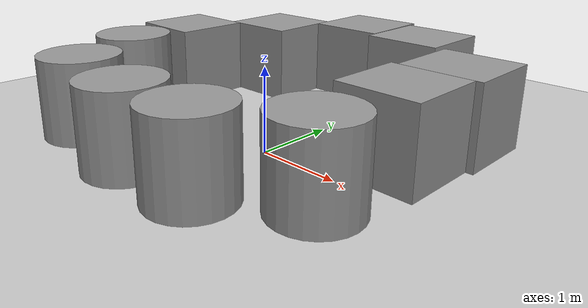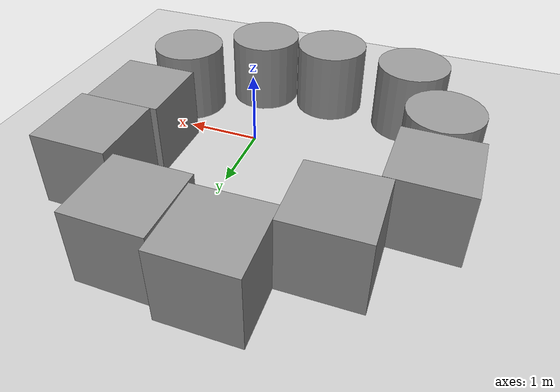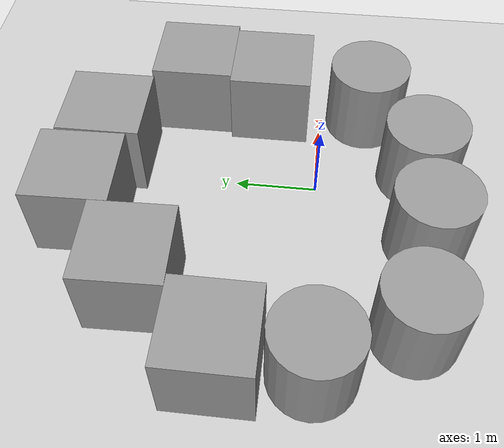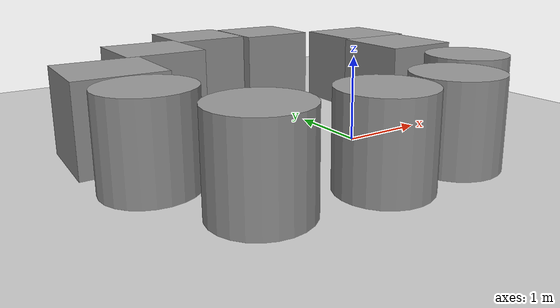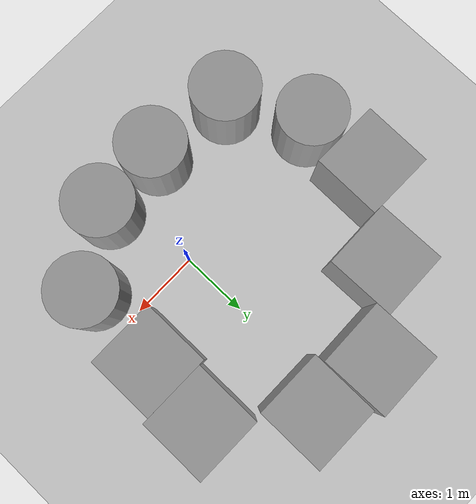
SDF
<sdf version="1.7">
 <world name="default">
  <light name="sun" type="directional">
   <pose>0 0 10 0 -0 0</pose>
   <diffuse>0.8 0.8 0.8 1</diffuse>
   <specular>0.2 0.2 0.2 1</specular>
   <attenuation>
    <range>1000</range>
    <constant>0.9</constant>
    <linear>0.01</linear>
    <quadratic>0.001</quadratic>
   </attenuation>
   <direction>-0.5 0.1 -0.9</direction>
   <spot><inner_angle>0</inner_angle><outer_angle>0</outer_angle><falloff>0</falloff></spot>
  </light>
  <model name="ground_plane">
   <static>1</static>
   <link name="link">
    <collision name="collision">
     <geometry><plane><normal>0 0 1</normal><size>100 100</size></plane></geometry>
     <surface><friction><ode><mu>100</mu><mu2>50</mu2></ode></friction></surface>
    </collision>
    <visual name="visual">
     <cast_shadows>0</cast_shadows>
     <geometry><plane><normal>0 0 1</normal><size>100 100</size></plane></geometry>
     <material>
      <script><uri>file://media/materials/scripts/gazebo.material</uri><name>Gazebo/Grey</name></script>
     </material>
    </visual>
   </link>
  </model>
  <gravity>0 0 -9.8</gravity>
  <magnetic_field>6e-06 2.3e-05 -4.2e-05</magnetic_field>
  <atmosphere type="adiabatic"/>
  <physics type="ode">
   <max_step_size>0.001</max_step_size>
   <real_time_factor>1</real_time_factor>
   <real_time_update_rate>1000</real_time_update_rate>
  </physics>
  <scene><ambient>0.4 0.4 0.4 1</ambient><background>0.7 0.7 0.7 1</background><shadows>1</shadows></scene>
  <spherical_coordinates>
   <surface_model>EARTH_WGS84</surface_model>
   <latitude_deg>0</latitude_deg>
   <longitude_deg>0</longitude_deg>
   <elevation>0</elevation>
   <heading_deg>0</heading_deg>
  </spherical_coordinates>
  <audio><device>default</device></audio>
  <model name="unit_box">
   <pose>-2.55355 0.943813 0.499995 1e-05 -0 -0.008103</pose>
   <link name="link">
    <inertial>
     <mass>1</mass>
     <inertia>
      <ixx>0.166667</ixx>
      <ixy>0</ixy>
      <ixz>0</ixz>
      <iyy>0.166667</iyy>
      <iyz>0</iyz>
      <izz>0.166667</izz>
     </inertia>
    </inertial>
    <collision name="collision"><geometry><box><size>1 1 1</size></box></geometry></collision>
    <visual name="visual">
     <geometry><box><size>1 1 1</size></box></geometry>
     <material>
      <script><name>Gazebo/Grey</name><uri>file://media/materials/scripts/gazebo.material</uri></script>
     </material>
    </visual>
   </link>
  </model>
  <model name="unit_box_0">
   <pose>-1.70283 1.95109 0.499995 0 1e-05 0.020154</pose>
   <link name="link">
    <inertial>
     <mass>1</mass>
     <inertia>
      <ixx>0.166667</ixx>
      <ixy>0</ixy>
      <ixz>0</ixz>
      <iyy>0.166667</iyy>
      <iyz>0</iyz>
      <izz>0.166667</izz>
     </inertia>
    </inertial>
    <collision name="collision"><geometry><box><size>1 1 1</size></box></geometry></collision>
    <visual name="visual">
     <geometry><box><size>1 1 1</size></box></geometry>
     <material>
      <script><name>Gazebo/Grey</name><uri>file://media/materials/scripts/gazebo.material</uri></script>
     </material>
    </visual>
   </link>
  </model>
  <model name="unit_box_1">
   <pose>-0.718512 2.74903 0.5 0 -0 0.020323</pose>
   <link name="link">
    <inertial>
     <mass>1</mass>
     <inertia>
      <ixx>0.166667</ixx>
      <ixy>0</ixy>
      <ixz>0</ixz>
      <iyy>0.166667</iyy>
      <iyz>0</iyz>
      <izz>0.166667</izz>
     </inertia>
    </inertial>
    <collision name="collision"><geometry><box><size>1 1 1</size></box></geometry></collision>
    <visual name="visual">
     <geometry><box><size>1 1 1</size></box></geometry>
     <material>
      <script><name>Gazebo/Grey</name><uri>file://media/materials/scripts/gazebo.material</uri></script>
     </material>
    </visual>
   </link>
  </model>
  <model name="unit_box_2">
   <pose>0.302542 2.61661 0.499995 -1e-05 -0 -0</pose>
   <link name="link">
    <inertial>
     <mass>1</mass>
     <inertia>
      <ixx>0.166667</ixx>
      <ixy>0</ixy>
      <ixz>0</ixz>
      <iyy>0.166667</iyy>
      <iyz>0</iyz>
      <izz>0.166667</izz>
     </inertia>
    </inertial>
    <collision name="collision"><geometry><box><size>1 1 1</size></box></geometry></collision>
    <visual name="visual">
     <geometry><box><size>1 1 1</size></box></geometry>
     <material>
      <script><name>Gazebo/Grey</name><uri>file://media/materials/scripts/gazebo.material</uri></script>
     </material>
    </visual>
   </link>
  </model>
  <model name="unit_box_3">
   <pose>1.4054 1.66152 0.499995 -1e-05 -0 -0.000272</pose>
   <link name="link">
    <inertial>
     <mass>1</mass>
     <inertia>
      <ixx>0.166667</ixx>
      <ixy>0</ixy>
      <ixz>0</ixz>
      <iyy>0.166667</iyy>
      <iyz>0</iyz>
      <izz>0.166667</izz>
     </inertia>
    </inertial>
    <collision name="collision"><geometry><box><size>1 1 1</size></box></geometry></collision>
    <visual name="visual">
     <geometry><box><size>1 1 1</size></box></geometry>
     <material>
      <script><name>Gazebo/Grey</name><uri>file://media/materials/scripts/gazebo.material</uri></script>
     </material>
    </visual>
   </link>
  </model>
  <model name="unit_box_4">
   <pose>1.31957 0.661537 0.499995 -1e-05 -0 -0.000282</pose>
   <link name="link">
    <inertial>
     <mass>1</mass>
     <inertia>
      <ixx>0.166667</ixx>
      <ixy>0</ixy>
      <ixz>0</ixz>
      <iyy>0.166667</iyy>
      <iyz>0</iyz>
      <izz>0.166667</izz>
     </inertia>
    </inertial>
    <collision name="collision"><geometry><box><size>1 1 1</size></box></geometry></collision>
    <visual name="visual">
     <geometry><box><size>1 1 1</size></box></geometry>
     <material>
      <script><name>Gazebo/Grey</name><uri>file://media/materials/scripts/gazebo.material</uri></script>
     </material>
    </visual>
   </link>
  </model>
  <model name="unit_cylinder">
   <pose>-2.5218 -0.084834 0.5 0 -0 0</pose>
   <link name="link">
    <inertial>
     <mass>1</mass>
     <inertia><ixx>0.145833</ixx><ixy>0</ixy><ixz>0</ixz><iyy>0.145833</iyy><iyz>0</iyz><izz>0.125</izz></inertia>
    </inertial>
    <collision name="collision">
     <geometry><cylinder><radius>0.5</radius><length>1</length></cylinder></geometry>
    </collision>
    <visual name="visual">
     <geometry><cylinder><radius>0.5</radius><length>1</length></cylinder></geometry>
     <material>
      <script><name>Gazebo/Grey</name><uri>file://media/materials/scripts/gazebo.material</uri></script>
     </material>
    </visual>
   </link>
  </model>
  <model name="unit_cylinder_0">
   <pose>-1.95526 -1.15947 0.5 0 -0 0</pose>
   <link name="link">
    <inertial>
     <mass>1</mass>
     <inertia><ixx>0.145833</ixx><ixy>0</ixy><ixz>0</ixz><iyy>0.145833</iyy><iyz>0</iyz><izz>0.125</izz></inertia>
    </inertial>
    <collision name="collision">
     <geometry><cylinder><radius>0.5</radius><length>1</length></cylinder></geometry>
    </collision>
    <visual name="visual">
     <geometry><cylinder><radius>0.5</radius><length>1</length></cylinder></geometry>
     <material>
      <script><name>Gazebo/Grey</name><uri>file://media/materials/scripts/gazebo.material</uri></script>
     </material>
    </visual>
   </link>
  </model>
  <model name="unit_cylinder_1">
   <pose>-0.718537 -1.32926 0.5 0 -0 0</pose>
   <link name="link">
    <inertial>
     <mass>1</mass>
     <inertia><ixx>0.145833</ixx><ixy>0</ixy><ixz>0</ixz><iyy>0.145833</iyy><iyz>0</iyz><izz>0.125</izz></inertia>
    </inertial>
    <collision name="collision">
     <geometry><cylinder><radius>0.5</radius><length>1</length></cylinder></geometry>
    </collision>
    <visual name="visual">
     <geometry><cylinder><radius>0.5</radius><length>1</length></cylinder></geometry>
     <material>
      <script><name>Gazebo/Grey</name><uri>file://media/materials/scripts/gazebo.material</uri></script>
     </material>
    </visual>
   </link>
  </model>
  <model name="unit_cylinder_2">
   <pose>0.314751 -1.2653 0.5 0 -0 0</pose>
   <link name="link">
    <inertial>
     <mass>1</mass>
     <inertia><ixx>0.145833</ixx><ixy>0</ixy><ixz>0</ixz><iyy>0.145833</iyy><iyz>0</iyz><izz>0.125</izz></inertia>
    </inertial>
    <collision name="collision">
     <geometry><cylinder><radius>0.5</radius><length>1</length></cylinder></geometry>
    </collision>
    <visual name="visual">
     <geometry><cylinder><radius>0.5</radius><length>1</length></cylinder></geometry>
     <material>
      <script><name>Gazebo/Grey</name><uri>file://media/materials/scripts/gazebo.material</uri></script>
     </material>
    </visual>
   </link>
  </model>
  <model name="unit_cylinder_3">
   <pose>1.27869 -0.586772 0.5 0 -0 0</pose>
   <link name="link">
    <inertial>
     <mass>1</mass>
     <inertia><ixx>0.145833</ixx><ixy>0</ixy><ixz>0</ixz><iyy>0.145833</iyy><iyz>0</iyz><izz>0.125</izz></inertia>
    </inertial>
    <collision name="collision">
     <geometry><cylinder><radius>0.5</radius><length>1</length></cylinder></geometry>
    </collision>
    <visual name="visual">
     <geometry><cylinder><radius>0.5</radius><length>1</length></cylinder></geometry>
     <material>
      <script><name>Gazebo/Grey</name><uri>file://media/materials/scripts/gazebo.material</uri></script>
     </material>
    </visual>
   </link>
  </model>
  <joint type="revolute" name="joint">
   <pose>0 0 -0.036785 0 0 0</pose>
   <parent>base</parent>
   <child>top</child>
   <axis><xyz>0 0 1</xyz><limit><lower>-10000000000000000</lower><upper>10000000000000000</upper></limit></axis>
  </joint>
 </world>
</sdf>
